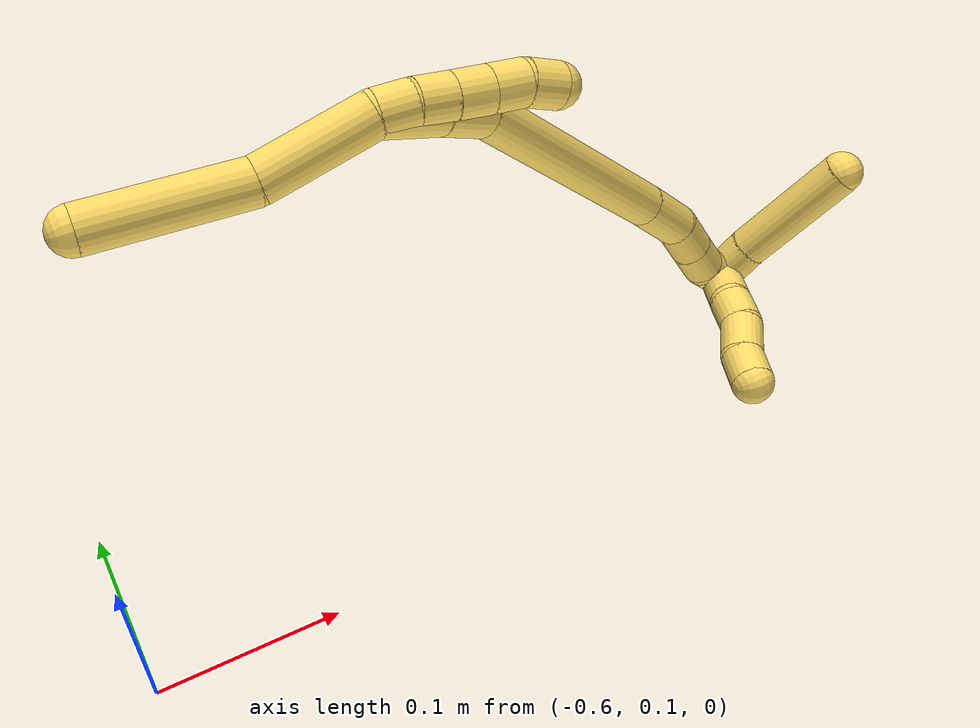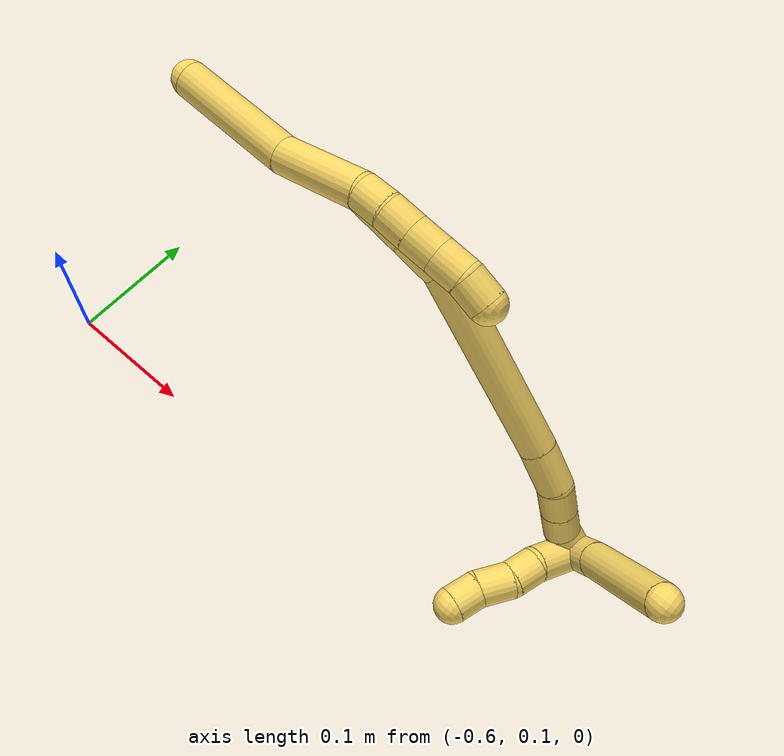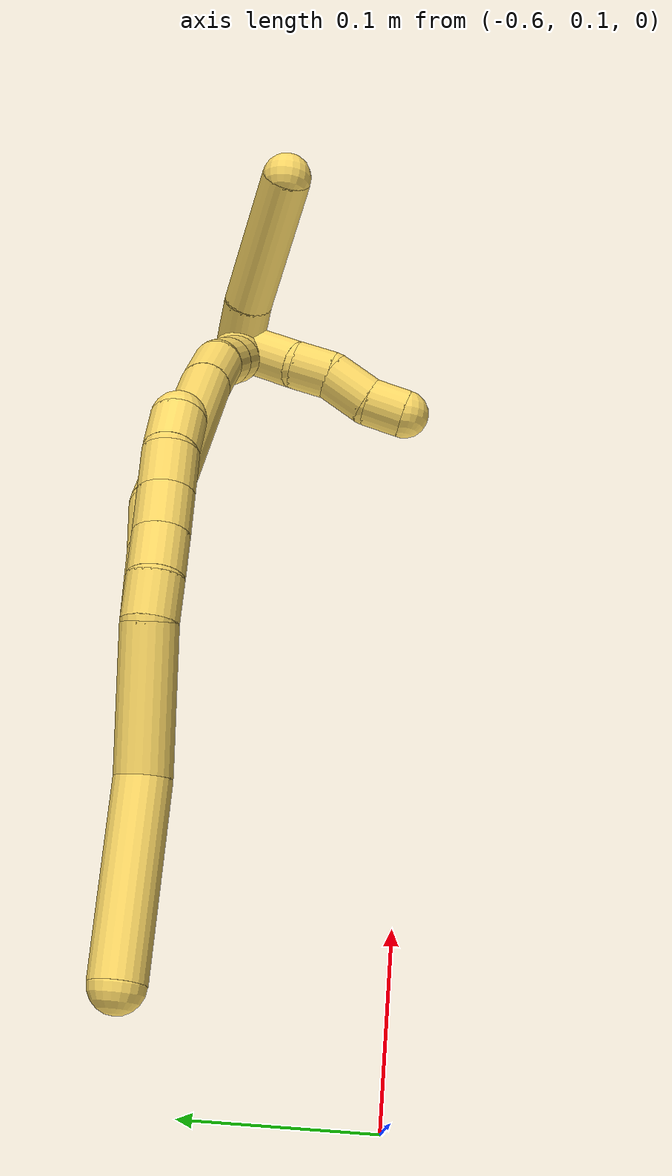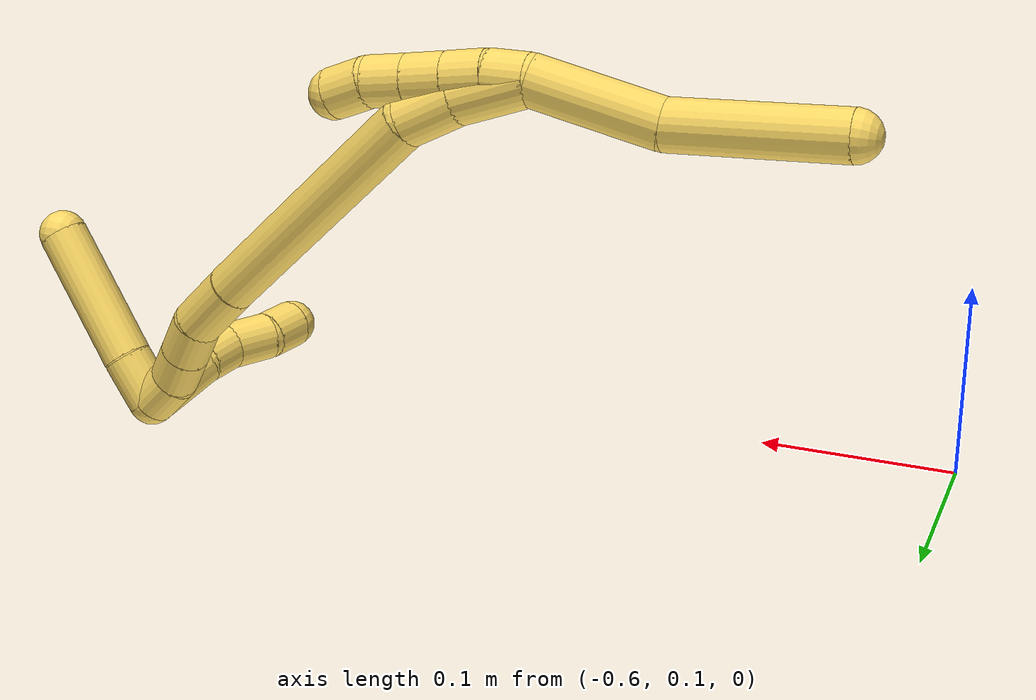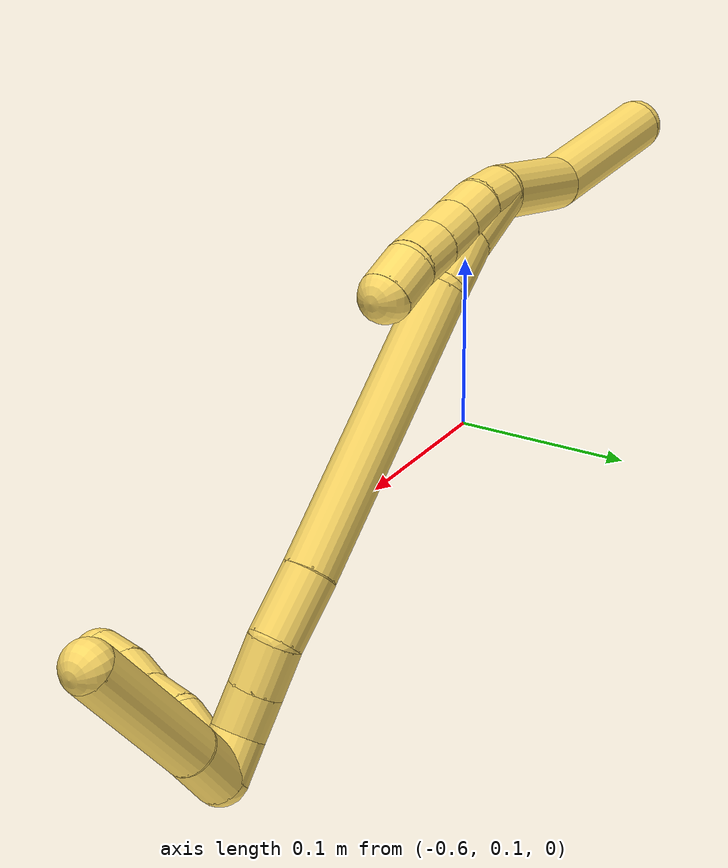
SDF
<sdf version="1.7">
 <world name="default">
  <model name="5">
   <static>0</static>
   <link name="5">
    <collision name="collision-cylinder-e_1_2_8">
     <pose>-0.005041 0.004511 0.03136 -0.142875 -0.157794 0.011315</pose>
     <geometry><cylinder><radius>0.0125</radius><length>0.064163</length></cylinder></geometry>
     <surface>
      <friction><ode><mu>1.16</mu><mu2>1.16</mu2><slip1>0</slip1><slip2>0</slip2></ode></friction>
      <contact><ode><kp>1e+06</kp><kd>1</kd><max_vel>0</max_vel><min_depth>0.001</min_depth></ode></contact>
     </surface>
    </collision>
    <visual name="visual-cylinder-e_1_2_8">
     <pose>-0.005041 0.004511 0.03136 -0.142875 -0.157794 0.011315</pose>
     <geometry><cylinder><radius>0.0125</radius><length>0.064163</length></cylinder></geometry>
     <material><ambient>1 0.858824 0.4 1</ambient></material>
    </visual>
    <collision name="collision-cylinder-e_2_8_6">
     <pose>-0.008001 0.00596 0.105479 0.071513 0.048532 0.001736</pose>
     <geometry><cylinder><radius>0.0125</radius><length>0.085837</length></cylinder></geometry>
     <surface>
      <friction><ode><mu>1.16</mu><mu2>1.16</mu2><slip1>0</slip1><slip2>0</slip2></ode></friction>
      <contact><ode><kp>1e+06</kp><kd>1</kd><max_vel>0</max_vel><min_depth>0.001</min_depth></ode></contact>
     </surface>
    </collision>
    <visual name="visual-cylinder-e_2_8_6">
     <pose>-0.008001 0.00596 0.105479 0.071513 0.048532 0.001736</pose>
     <geometry><cylinder><radius>0.0125</radius><length>0.085837</length></cylinder></geometry>
     <material><ambient>1 0.858824 0.4 1</ambient></material>
    </visual>
    <collision name="collision-cylinder-e_1_2_9">
     <pose>-0.000322 0.000238 -0.009992 -3.11778 -0.032213 1.86834</pose>
     <geometry><cylinder><radius>0.0125</radius><length>0.02</length></cylinder></geometry>
     <surface>
      <friction><ode><mu>1.16</mu><mu2>1.16</mu2><slip1>0</slip1><slip2>0</slip2></ode></friction>
      <contact><ode><kp>1e+06</kp><kd>1</kd><max_vel>0</max_vel><min_depth>0.001</min_depth></ode></contact>
     </surface>
    </collision>
    <visual name="visual-cylinder-e_1_2_9">
     <pose>-0.000322 0.000238 -0.009992 -3.11778 -0.032213 1.86834</pose>
     <geometry><cylinder><radius>0.0125</radius><length>0.02</length></cylinder></geometry>
     <material><ambient>1 0.858824 0.4 1</ambient></material>
    </visual>
    <collision name="collision-cylinder-e_2_9_10">
     <pose>-0.001621 0.002112 -0.029801 -2.97645 -0.09789 1.06886</pose>
     <geometry><cylinder><radius>0.0125</radius><length>0.02</length></cylinder></geometry>
     <surface>
      <friction><ode><mu>1.16</mu><mu2>1.16</mu2><slip1>0</slip1><slip2>0</slip2></ode></friction>
      <contact><ode><kp>1e+06</kp><kd>1</kd><max_vel>0</max_vel><min_depth>0.001</min_depth></ode></contact>
     </surface>
    </collision>
    <visual name="visual-cylinder-e_2_9_10">
     <pose>-0.001621 0.002112 -0.029801 -2.97645 -0.09789 1.06886</pose>
     <geometry><cylinder><radius>0.0125</radius><length>0.02</length></cylinder></geometry>
     <material><ambient>1 0.858824 0.4 1</ambient></material>
    </visual>
    <collision name="collision-cylinder-e_3_10_11">
     <pose>-0.003438 0.00538 -0.049448 -2.97707 -0.084027 0.943049</pose>
     <geometry><cylinder><radius>0.0125</radius><length>0.02</length></cylinder></geometry>
     <surface>
      <friction><ode><mu>1.16</mu><mu2>1.16</mu2><slip1>0</slip1><slip2>0</slip2></ode></friction>
      <contact><ode><kp>1e+06</kp><kd>1</kd><max_vel>0</max_vel><min_depth>0.001</min_depth></ode></contact>
     </surface>
    </collision>
    <visual name="visual-cylinder-e_3_10_11">
     <pose>-0.003438 0.00538 -0.049448 -2.97707 -0.084027 0.943049</pose>
     <geometry><cylinder><radius>0.0125</radius><length>0.02</length></cylinder></geometry>
     <material><ambient>1 0.858824 0.4 1</ambient></material>
    </visual>
    <collision name="collision-cylinder-e_4_11_12">
     <pose>-0.005066 0.008546 -0.069128 -2.98707 -0.078956 0.943581</pose>
     <geometry><cylinder><radius>0.0125</radius><length>0.02</length></cylinder></geometry>
     <surface>
      <friction><ode><mu>1.16</mu><mu2>1.16</mu2><slip1>0</slip1><slip2>0</slip2></ode></friction>
      <contact><ode><kp>1e+06</kp><kd>1</kd><max_vel>0</max_vel><min_depth>0.001</min_depth></ode></contact>
     </surface>
    </collision>
    <visual name="visual-cylinder-e_4_11_12">
     <pose>-0.005066 0.008546 -0.069128 -2.98707 -0.078956 0.943581</pose>
     <geometry><cylinder><radius>0.0125</radius><length>0.02</length></cylinder></geometry>
     <material><ambient>1 0.858824 0.4 1</ambient></material>
    </visual>
    <collision name="collision-cylinder-e_5_12_5">
     <pose>-0.00848 0.013395 -0.08804 -2.79099 -0.265583 1.29234</pose>
     <geometry><cylinder><radius>0.0125</radius><length>0.02</length></cylinder></geometry>
     <surface>
      <friction><ode><mu>1.16</mu><mu2>1.16</mu2><slip1>0</slip1><slip2>0</slip2></ode></friction>
      <contact><ode><kp>1e+06</kp><kd>1</kd><max_vel>0</max_vel><min_depth>0.001</min_depth></ode></contact>
     </surface>
    </collision>
    <visual name="visual-cylinder-e_5_12_5">
     <pose>-0.00848 0.013395 -0.08804 -2.79099 -0.265583 1.29234</pose>
     <geometry><cylinder><radius>0.0125</radius><length>0.02</length></cylinder></geometry>
     <material><ambient>1 0.858824 0.4 1</ambient></material>
    </visual>
    <collision name="collision-cylinder-e_1_2_13">
     <pose>-0.002885 0.006207 -0.017228 -2.79577 -0.15629 0.842933</pose>
     <geometry><cylinder><radius>0.0125</radius><length>0.037075</length></cylinder></geometry>
     <surface>
      <friction><ode><mu>1.16</mu><mu2>1.16</mu2><slip1>0</slip1><slip2>0</slip2></ode></friction>
      <contact><ode><kp>1e+06</kp><kd>1</kd><max_vel>0</max_vel><min_depth>0.001</min_depth></ode></contact>
     </surface>
    </collision>
    <visual name="visual-cylinder-e_1_2_13">
     <pose>-0.002885 0.006207 -0.017228 -2.79577 -0.15629 0.842933</pose>
     <geometry><cylinder><radius>0.0125</radius><length>0.037075</length></cylinder></geometry>
     <material><ambient>1 0.858824 0.4 1</ambient></material>
    </visual>
    <collision name="collision-cylinder-e_2_13_14">
     <pose>-0.008196 0.019015 -0.046727 -2.64812 -0.172345 0.66082</pose>
     <geometry><cylinder><radius>0.0125</radius><length>0.028287</length></cylinder></geometry>
     <surface>
      <friction><ode><mu>1.16</mu><mu2>1.16</mu2><slip1>0</slip1><slip2>0</slip2></ode></friction>
      <contact><ode><kp>1e+06</kp><kd>1</kd><max_vel>0</max_vel><min_depth>0.001</min_depth></ode></contact>
     </surface>
    </collision>
    <visual name="visual-cylinder-e_2_13_14">
     <pose>-0.008196 0.019015 -0.046727 -2.64812 -0.172345 0.66082</pose>
     <geometry><cylinder><radius>0.0125</radius><length>0.028287</length></cylinder></geometry>
     <material><ambient>1 0.858824 0.4 1</ambient></material>
    </visual>
    <collision name="collision-cylinder-e_3_14_15">
     <pose>-0.040651 0.066556 -0.10661 -2.43138 -0.446074 1.09786</pose>
     <geometry><cylinder><radius>0.0125</radius><length>0.139209</length></cylinder></geometry>
     <surface>
      <friction><ode><mu>1.16</mu><mu2>1.16</mu2><slip1>0</slip1><slip2>0</slip2></ode></friction>
      <contact><ode><kp>1e+06</kp><kd>1</kd><max_vel>0</max_vel><min_depth>0.001</min_depth></ode></contact>
     </surface>
    </collision>
    <visual name="visual-cylinder-e_3_14_15">
     <pose>-0.040651 0.066556 -0.10661 -2.43138 -0.446074 1.09786</pose>
     <geometry><cylinder><radius>0.0125</radius><length>0.139209</length></cylinder></geometry>
     <material><ambient>1 0.858824 0.4 1</ambient></material>
    </visual>
    <collision name="collision-cylinder-e_4_15_16">
     <pose>-0.078569 0.116928 -0.165135 -2.42898 -0.500466 1.20351</pose>
     <geometry><cylinder><radius>0.0125</radius><length>0.032881</length></cylinder></geometry>
     <surface>
      <friction><ode><mu>1.16</mu><mu2>1.16</mu2><slip1>0</slip1><slip2>0</slip2></ode></friction>
      <contact><ode><kp>1e+06</kp><kd>1</kd><max_vel>0</max_vel><min_depth>0.001</min_depth></ode></contact>
     </surface>
    </collision>
    <visual name="visual-cylinder-e_4_15_16">
     <pose>-0.078569 0.116928 -0.165135 -2.42898 -0.500466 1.20351</pose>
     <geometry><cylinder><radius>0.0125</radius><length>0.032881</length></cylinder></geometry>
     <material><ambient>1 0.858824 0.4 1</ambient></material>
    </visual>
    <collision name="collision-cylinder-e_5_16_17">
     <pose>-0.093255 0.133774 -0.180919 -2.15182 -0.653805 1.1219</pose>
     <geometry><cylinder><radius>0.0125</radius><length>0.022352</length></cylinder></geometry>
     <surface>
      <friction><ode><mu>1.16</mu><mu2>1.16</mu2><slip1>0</slip1><slip2>0</slip2></ode></friction>
      <contact><ode><kp>1e+06</kp><kd>1</kd><max_vel>0</max_vel><min_depth>0.001</min_depth></ode></contact>
     </surface>
    </collision>
    <visual name="visual-cylinder-e_5_16_17">
     <pose>-0.093255 0.133774 -0.180919 -2.15182 -0.653805 1.1219</pose>
     <geometry><cylinder><radius>0.0125</radius><length>0.022352</length></cylinder></geometry>
     <material><ambient>1 0.858824 0.4 1</ambient></material>
    </visual>
    <collision name="collision-cylinder-e_6_17_18">
     <pose>-0.106182 0.147834 -0.190204 -2.15735 -0.655154 1.12988</pose>
     <geometry><cylinder><radius>0.0125</radius><length>0.020121</length></cylinder></geometry>
     <surface>
      <friction><ode><mu>1.16</mu><mu2>1.16</mu2><slip1>0</slip1><slip2>0</slip2></ode></friction>
      <contact><ode><kp>1e+06</kp><kd>1</kd><max_vel>0</max_vel><min_depth>0.001</min_depth></ode></contact>
     </surface>
    </collision>
    <visual name="visual-cylinder-e_6_17_18">
     <pose>-0.106182 0.147834 -0.190204 -2.15735 -0.655154 1.12988</pose>
     <geometry><cylinder><radius>0.0125</radius><length>0.020121</length></cylinder></geometry>
     <material><ambient>1 0.858824 0.4 1</ambient></material>
    </visual>
    <collision name="collision-cylinder-e_7_18_1">
     <pose>-0.116361 0.160787 -0.201293 -2.38431 -0.415216 0.973885</pose>
     <geometry><cylinder><radius>0.0125</radius><length>0.020074</length></cylinder></geometry>
     <surface>
      <friction><ode><mu>1.16</mu><mu2>1.16</mu2><slip1>0</slip1><slip2>0</slip2></ode></friction>
      <contact><ode><kp>1e+06</kp><kd>1</kd><max_vel>0</max_vel><min_depth>0.001</min_depth></ode></contact>
     </surface>
    </collision>
    <visual name="visual-cylinder-e_7_18_1">
     <pose>-0.116361 0.160787 -0.201293 -2.38431 -0.415216 0.973885</pose>
     <geometry><cylinder><radius>0.0125</radius><length>0.020074</length></cylinder></geometry>
     <material><ambient>1 0.858824 0.4 1</ambient></material>
    </visual>
    <collision name="collision-cylinder-e_1_1_19">
     <pose>-0.130034 0.153482 -0.201641 1.13581 -0.570081 -0.369634</pose>
     <geometry><cylinder><radius>0.0125</radius><length>0.035666</length></cylinder></geometry>
     <surface>
      <friction><ode><mu>1.16</mu><mu2>1.16</mu2><slip1>0</slip1><slip2>0</slip2></ode></friction>
      <contact><ode><kp>1e+06</kp><kd>1</kd><max_vel>0</max_vel><min_depth>0.001</min_depth></ode></contact>
     </surface>
    </collision>
    <visual name="visual-cylinder-e_1_1_19">
     <pose>-0.130034 0.153482 -0.201641 1.13581 -0.570081 -0.369634</pose>
     <geometry><cylinder><radius>0.0125</radius><length>0.035666</length></cylinder></geometry>
     <material><ambient>1 0.858824 0.4 1</ambient></material>
    </visual>
    <collision name="collision-cylinder-e_2_19_20">
     <pose>-0.147419 0.13385 -0.192821 1.17781 -0.872533 -0.603813</pose>
     <geometry><cylinder><radius>0.0125</radius><length>0.020261</length></cylinder></geometry>
     <surface>
      <friction><ode><mu>1.16</mu><mu2>1.16</mu2><slip1>0</slip1><slip2>0</slip2></ode></friction>
      <contact><ode><kp>1e+06</kp><kd>1</kd><max_vel>0</max_vel><min_depth>0.001</min_depth></ode></contact>
     </surface>
    </collision>
    <visual name="visual-cylinder-e_2_19_20">
     <pose>-0.147419 0.13385 -0.192821 1.17781 -0.872533 -0.603813</pose>
     <geometry><cylinder><radius>0.0125</radius><length>0.020261</length></cylinder></geometry>
     <material><ambient>1 0.858824 0.4 1</ambient></material>
    </visual>
    <collision name="collision-cylinder-e_3_20_21">
     <pose>-0.163689 0.122173 -0.184011 0.730822 -0.787128 -0.315093</pose>
     <geometry><cylinder><radius>0.0125</radius><length>0.024029</length></cylinder></geometry>
     <surface>
      <friction><ode><mu>1.16</mu><mu2>1.16</mu2><slip1>0</slip1><slip2>0</slip2></ode></friction>
      <contact><ode><kp>1e+06</kp><kd>1</kd><max_vel>0</max_vel><min_depth>0.001</min_depth></ode></contact>
     </surface>
    </collision>
    <visual name="visual-cylinder-e_3_20_21">
     <pose>-0.163689 0.122173 -0.184011 0.730822 -0.787128 -0.315093</pose>
     <geometry><cylinder><radius>0.0125</radius><length>0.024029</length></cylinder></geometry>
     <material><ambient>1 0.858824 0.4 1</ambient></material>
    </visual>
    <collision name="collision-cylinder-e_4_21_4">
     <pose>-0.180156 0.111029 -0.175041 1.11976 -0.917408 -0.60035</pose>
     <geometry><cylinder><radius>0.0125</radius><length>0.020043</length></cylinder></geometry>
     <surface>
      <friction><ode><mu>1.16</mu><mu2>1.16</mu2><slip1>0</slip1><slip2>0</slip2></ode></friction>
      <contact><ode><kp>1e+06</kp><kd>1</kd><max_vel>0</max_vel><min_depth>0.001</min_depth></ode></contact>
     </surface>
    </collision>
    <visual name="visual-cylinder-e_4_21_4">
     <pose>-0.180156 0.111029 -0.175041 1.11976 -0.917408 -0.60035</pose>
     <geometry><cylinder><radius>0.0125</radius><length>0.020043</length></cylinder></geometry>
     <material><ambient>1 0.858824 0.4 1</ambient></material>
    </visual>
    <collision name="collision-cylinder-e_1_1_22">
     <pose>-0.116326 0.157571 -0.216107 2.27788 0.315062 0.663837</pose>
     <geometry><cylinder><radius>0.0125</radius><length>0.026356</length></cylinder></geometry>
     <surface>
      <friction><ode><mu>1.16</mu><mu2>1.16</mu2><slip1>0</slip1><slip2>0</slip2></ode></friction>
      <contact><ode><kp>1e+06</kp><kd>1</kd><max_vel>0</max_vel><min_depth>0.001</min_depth></ode></contact>
     </surface>
    </collision>
    <visual name="visual-cylinder-e_1_1_22">
     <pose>-0.116326 0.157571 -0.216107 2.27788 0.315062 0.663837</pose>
     <geometry><cylinder><radius>0.0125</radius><length>0.026356</length></cylinder></geometry>
     <material><ambient>1 0.858824 0.4 1</ambient></material>
    </visual>
    <collision name="collision-cylinder-e_2_22_3">
     <pose>-0.103928 0.120339 -0.247029 2.25897 0.227772 0.475127</pose>
     <geometry><cylinder><radius>0.0125</radius><length>0.073644</length></cylinder></geometry>
     <surface>
      <friction><ode><mu>1.16</mu><mu2>1.16</mu2><slip1>0</slip1><slip2>0</slip2></ode></friction>
      <contact><ode><kp>1e+06</kp><kd>1</kd><max_vel>0</max_vel><min_depth>0.001</min_depth></ode></contact>
     </surface>
    </collision>
    <visual name="visual-cylinder-e_2_22_3">
     <pose>-0.103928 0.120339 -0.247029 2.25897 0.227772 0.475127</pose>
     <geometry><cylinder><radius>0.0125</radius><length>0.073644</length></cylinder></geometry>
     <material><ambient>1 0.858824 0.4 1</ambient></material>
    </visual>
    <collision name="collision-sphere-3">
     <pose>-0.095613 0.092632 -0.269812 0 -0 0</pose>
     <geometry><sphere><radius>0.0125</radius></sphere></geometry>
     <surface>
      <friction><ode><mu>1.16</mu><mu2>1.16</mu2><slip1>0</slip1><slip2>0</slip2></ode></friction>
      <contact><ode><kp>1e+06</kp><kd>1</kd><max_vel>0</max_vel><min_depth>0.001</min_depth></ode></contact>
     </surface>
    </collision>
    <visual name="visual-sphere-3">
     <pose>-0.095613 0.092632 -0.269812 0 -0 0</pose>
     <geometry><sphere><radius>0.0125</radius></sphere></geometry>
     <material><ambient>1 0.858824 0.4 1</ambient></material>
    </visual>
    <collision name="collision-sphere-22">
     <pose>-0.112243 0.148045 -0.224246 0 -0 0</pose>
     <geometry><sphere><radius>0.0125</radius></sphere></geometry>
     <surface>
      <friction><ode><mu>1.16</mu><mu2>1.16</mu2><slip1>0</slip1><slip2>0</slip2></ode></friction>
      <contact><ode><kp>1e+06</kp><kd>1</kd><max_vel>0</max_vel><min_depth>0.001</min_depth></ode></contact>
     </surface>
    </collision>
    <visual name="visual-sphere-22">
     <pose>-0.112243 0.148045 -0.224246 0 -0 0</pose>
     <geometry><sphere><radius>0.0125</radius></sphere></geometry>
     <material><ambient>1 0.858824 0.4 1</ambient></material>
    </visual>
    <collision name="collision-sphere-4">
     <pose>-0.188114 0.105547 -0.172385 0 -0 0</pose>
     <geometry><sphere><radius>0.0125</radius></sphere></geometry>
     <surface>
      <friction><ode><mu>1.16</mu><mu2>1.16</mu2><slip1>0</slip1><slip2>0</slip2></ode></friction>
      <contact><ode><kp>1e+06</kp><kd>1</kd><max_vel>0</max_vel><min_depth>0.001</min_depth></ode></contact>
     </surface>
    </collision>
    <visual name="visual-sphere-4">
     <pose>-0.188114 0.105547 -0.172385 0 -0 0</pose>
     <geometry><sphere><radius>0.0125</radius></sphere></geometry>
     <material><ambient>1 0.858824 0.4 1</ambient></material>
    </visual>
    <collision name="collision-sphere-21">
     <pose>-0.172199 0.116512 -0.177696 0 -0 0</pose>
     <geometry><sphere><radius>0.0125</radius></sphere></geometry>
     <surface>
      <friction><ode><mu>1.16</mu><mu2>1.16</mu2><slip1>0</slip1><slip2>0</slip2></ode></friction>
      <contact><ode><kp>1e+06</kp><kd>1</kd><max_vel>0</max_vel><min_depth>0.001</min_depth></ode></contact>
     </surface>
    </collision>
    <visual name="visual-sphere-21">
     <pose>-0.172199 0.116512 -0.177696 0 -0 0</pose>
     <geometry><sphere><radius>0.0125</radius></sphere></geometry>
     <material><ambient>1 0.858824 0.4 1</ambient></material>
    </visual>
    <collision name="collision-sphere-20">
     <pose>-0.155178 0.127834 -0.190327 0 -0 0</pose>
     <geometry><sphere><radius>0.0125</radius></sphere></geometry>
     <surface>
      <friction><ode><mu>1.16</mu><mu2>1.16</mu2><slip1>0</slip1><slip2>0</slip2></ode></friction>
      <contact><ode><kp>1e+06</kp><kd>1</kd><max_vel>0</max_vel><min_depth>0.001</min_depth></ode></contact>
     </surface>
    </collision>
    <visual name="visual-sphere-20">
     <pose>-0.155178 0.127834 -0.190327 0 -0 0</pose>
     <geometry><sphere><radius>0.0125</radius></sphere></geometry>
     <material><ambient>1 0.858824 0.4 1</ambient></material>
    </visual>
    <collision name="collision-sphere-11">
     <pose>-0.004277 0.007012 -0.059278 0 -0 0</pose>
     <geometry><sphere><radius>0.0125</radius></sphere></geometry>
     <surface>
      <friction><ode><mu>1.16</mu><mu2>1.16</mu2><slip1>0</slip1><slip2>0</slip2></ode></friction>
      <contact><ode><kp>1e+06</kp><kd>1</kd><max_vel>0</max_vel><min_depth>0.001</min_depth></ode></contact>
     </surface>
    </collision>
    <visual name="visual-sphere-11">
     <pose>-0.004277 0.007012 -0.059278 0 -0 0</pose>
     <geometry><sphere><radius>0.0125</radius></sphere></geometry>
     <material><ambient>1 0.858824 0.4 1</ambient></material>
    </visual>
    <collision name="collision-sphere-10">
     <pose>-0.002599 0.003748 -0.039617 0 -0 0</pose>
     <geometry><sphere><radius>0.0125</radius></sphere></geometry>
     <surface>
      <friction><ode><mu>1.16</mu><mu2>1.16</mu2><slip1>0</slip1><slip2>0</slip2></ode></friction>
      <contact><ode><kp>1e+06</kp><kd>1</kd><max_vel>0</max_vel><min_depth>0.001</min_depth></ode></contact>
     </surface>
    </collision>
    <visual name="visual-sphere-10">
     <pose>-0.002599 0.003748 -0.039617 0 -0 0</pose>
     <geometry><sphere><radius>0.0125</radius></sphere></geometry>
     <material><ambient>1 0.858824 0.4 1</ambient></material>
    </visual>
    <collision name="collision-sphere-6">
     <pose>-0.005918 0.002897 0.148237 0 -0 0</pose>
     <geometry><sphere><radius>0.0125</radius></sphere></geometry>
     <surface>
      <friction><ode><mu>1.16</mu><mu2>1.16</mu2><slip1>0</slip1><slip2>0</slip2></ode></friction>
      <contact><ode><kp>1e+06</kp><kd>1</kd><max_vel>0</max_vel><min_depth>0.001</min_depth></ode></contact>
     </surface>
    </collision>
    <visual name="visual-sphere-6">
     <pose>-0.005918 0.002897 0.148237 0 -0 0</pose>
     <geometry><sphere><radius>0.0125</radius></sphere></geometry>
     <material><ambient>1 0.858824 0.4 1</ambient></material>
    </visual>
    <collision name="collision-sphere-9">
     <pose>-0.000644 0.000476 -0.019984 0 -0 0</pose>
     <geometry><sphere><radius>0.0125</radius></sphere></geometry>
     <surface>
      <friction><ode><mu>1.16</mu><mu2>1.16</mu2><slip1>0</slip1><slip2>0</slip2></ode></friction>
      <contact><ode><kp>1e+06</kp><kd>1</kd><max_vel>0</max_vel><min_depth>0.001</min_depth></ode></contact>
     </surface>
    </collision>
    <visual name="visual-sphere-9">
     <pose>-0.000644 0.000476 -0.019984 0 -0 0</pose>
     <geometry><sphere><radius>0.0125</radius></sphere></geometry>
     <material><ambient>1 0.858824 0.4 1</ambient></material>
    </visual>
    <collision name="collision-sphere-2">
     <geometry><sphere><radius>0.0125</radius></sphere></geometry>
     <surface>
      <friction><ode><mu>1.16</mu><mu2>1.16</mu2><slip1>0</slip1><slip2>0</slip2></ode></friction>
      <contact><ode><kp>1e+06</kp><kd>1</kd><max_vel>0</max_vel><min_depth>0.001</min_depth></ode></contact>
     </surface>
    </collision>
    <visual name="visual-sphere-2">
     <geometry><sphere><radius>0.0125</radius></sphere></geometry>
     <material><ambient>1 0.858824 0.4 1</ambient></material>
    </visual>
    <collision name="collision-sphere-19">
     <pose>-0.139659 0.139867 -0.195315 0 -0 0</pose>
     <geometry><sphere><radius>0.0125</radius></sphere></geometry>
     <surface>
      <friction><ode><mu>1.16</mu><mu2>1.16</mu2><slip1>0</slip1><slip2>0</slip2></ode></friction>
      <contact><ode><kp>1e+06</kp><kd>1</kd><max_vel>0</max_vel><min_depth>0.001</min_depth></ode></contact>
     </surface>
    </collision>
    <visual name="visual-sphere-19">
     <pose>-0.139659 0.139867 -0.195315 0 -0 0</pose>
     <geometry><sphere><radius>0.0125</radius></sphere></geometry>
     <material><ambient>1 0.858824 0.4 1</ambient></material>
    </visual>
    <collision name="collision-sphere-8">
     <pose>-0.010083 0.009023 0.06272 0 -0 0</pose>
     <geometry><sphere><radius>0.0125</radius></sphere></geometry>
     <surface>
      <friction><ode><mu>1.16</mu><mu2>1.16</mu2><slip1>0</slip1><slip2>0</slip2></ode></friction>
      <contact><ode><kp>1e+06</kp><kd>1</kd><max_vel>0</max_vel><min_depth>0.001</min_depth></ode></contact>
     </surface>
    </collision>
    <visual name="visual-sphere-8">
     <pose>-0.010083 0.009023 0.06272 0 -0 0</pose>
     <geometry><sphere><radius>0.0125</radius></sphere></geometry>
     <material><ambient>1 0.858824 0.4 1</ambient></material>
    </visual>
    <collision name="collision-sphere-12">
     <pose>-0.005855 0.010081 -0.078978 0 -0 0</pose>
     <geometry><sphere><radius>0.0125</radius></sphere></geometry>
     <surface>
      <friction><ode><mu>1.16</mu><mu2>1.16</mu2><slip1>0</slip1><slip2>0</slip2></ode></friction>
      <contact><ode><kp>1e+06</kp><kd>1</kd><max_vel>0</max_vel><min_depth>0.001</min_depth></ode></contact>
     </surface>
    </collision>
    <visual name="visual-sphere-12">
     <pose>-0.005855 0.010081 -0.078978 0 -0 0</pose>
     <geometry><sphere><radius>0.0125</radius></sphere></geometry>
     <material><ambient>1 0.858824 0.4 1</ambient></material>
    </visual>
    <collision name="collision-sphere-5">
     <pose>-0.011104 0.016709 -0.097103 0 -0 0</pose>
     <geometry><sphere><radius>0.0125</radius></sphere></geometry>
     <surface>
      <friction><ode><mu>1.16</mu><mu2>1.16</mu2><slip1>0</slip1><slip2>0</slip2></ode></friction>
      <contact><ode><kp>1e+06</kp><kd>1</kd><max_vel>0</max_vel><min_depth>0.001</min_depth></ode></contact>
     </surface>
    </collision>
    <visual name="visual-sphere-5">
     <pose>-0.011104 0.016709 -0.097103 0 -0 0</pose>
     <geometry><sphere><radius>0.0125</radius></sphere></geometry>
     <material><ambient>1 0.858824 0.4 1</ambient></material>
    </visual>
    <collision name="collision-sphere-13">
     <pose>-0.005771 0.012414 -0.034455 0 -0 0</pose>
     <geometry><sphere><radius>0.0125</radius></sphere></geometry>
     <surface>
      <friction><ode><mu>1.16</mu><mu2>1.16</mu2><slip1>0</slip1><slip2>0</slip2></ode></friction>
      <contact><ode><kp>1e+06</kp><kd>1</kd><max_vel>0</max_vel><min_depth>0.001</min_depth></ode></contact>
     </surface>
    </collision>
    <visual name="visual-sphere-13">
     <pose>-0.005771 0.012414 -0.034455 0 -0 0</pose>
     <geometry><sphere><radius>0.0125</radius></sphere></geometry>
     <material><ambient>1 0.858824 0.4 1</ambient></material>
    </visual>
    <collision name="collision-sphere-14">
     <pose>-0.010622 0.025615 -0.058999 0 -0 0</pose>
     <geometry><sphere><radius>0.0125</radius></sphere></geometry>
     <surface>
      <friction><ode><mu>1.16</mu><mu2>1.16</mu2><slip1>0</slip1><slip2>0</slip2></ode></friction>
      <contact><ode><kp>1e+06</kp><kd>1</kd><max_vel>0</max_vel><min_depth>0.001</min_depth></ode></contact>
     </surface>
    </collision>
    <visual name="visual-sphere-14">
     <pose>-0.010622 0.025615 -0.058999 0 -0 0</pose>
     <geometry><sphere><radius>0.0125</radius></sphere></geometry>
     <material><ambient>1 0.858824 0.4 1</ambient></material>
    </visual>
    <collision name="collision-sphere-15">
     <pose>-0.07068 0.107497 -0.154221 0 -0 0</pose>
     <geometry><sphere><radius>0.0125</radius></sphere></geometry>
     <surface>
      <friction><ode><mu>1.16</mu><mu2>1.16</mu2><slip1>0</slip1><slip2>0</slip2></ode></friction>
      <contact><ode><kp>1e+06</kp><kd>1</kd><max_vel>0</max_vel><min_depth>0.001</min_depth></ode></contact>
     </surface>
    </collision>
    <visual name="visual-sphere-15">
     <pose>-0.07068 0.107497 -0.154221 0 -0 0</pose>
     <geometry><sphere><radius>0.0125</radius></sphere></geometry>
     <material><ambient>1 0.858824 0.4 1</ambient></material>
    </visual>
    <collision name="collision-sphere-16">
     <pose>-0.086458 0.126359 -0.17605 0 -0 0</pose>
     <geometry><sphere><radius>0.0125</radius></sphere></geometry>
     <surface>
      <friction><ode><mu>1.16</mu><mu2>1.16</mu2><slip1>0</slip1><slip2>0</slip2></ode></friction>
      <contact><ode><kp>1e+06</kp><kd>1</kd><max_vel>0</max_vel><min_depth>0.001</min_depth></ode></contact>
     </surface>
    </collision>
    <visual name="visual-sphere-16">
     <pose>-0.086458 0.126359 -0.17605 0 -0 0</pose>
     <geometry><sphere><radius>0.0125</radius></sphere></geometry>
     <material><ambient>1 0.858824 0.4 1</ambient></material>
    </visual>
    <collision name="collision-sphere-17">
     <pose>-0.100053 0.14119 -0.185788 0 -0 0</pose>
     <geometry><sphere><radius>0.0125</radius></sphere></geometry>
     <surface>
      <friction><ode><mu>1.16</mu><mu2>1.16</mu2><slip1>0</slip1><slip2>0</slip2></ode></friction>
      <contact><ode><kp>1e+06</kp><kd>1</kd><max_vel>0</max_vel><min_depth>0.001</min_depth></ode></contact>
     </surface>
    </collision>
    <visual name="visual-sphere-17">
     <pose>-0.100053 0.14119 -0.185788 0 -0 0</pose>
     <geometry><sphere><radius>0.0125</radius></sphere></geometry>
     <material><ambient>1 0.858824 0.4 1</ambient></material>
    </visual>
    <collision name="collision-sphere-18">
     <pose>-0.112312 0.154478 -0.194619 0 -0 0</pose>
     <geometry><sphere><radius>0.0125</radius></sphere></geometry>
     <surface>
      <friction><ode><mu>1.16</mu><mu2>1.16</mu2><slip1>0</slip1><slip2>0</slip2></ode></friction>
      <contact><ode><kp>1e+06</kp><kd>1</kd><max_vel>0</max_vel><min_depth>0.001</min_depth></ode></contact>
     </surface>
    </collision>
    <visual name="visual-sphere-18">
     <pose>-0.112312 0.154478 -0.194619 0 -0 0</pose>
     <geometry><sphere><radius>0.0125</radius></sphere></geometry>
     <material><ambient>1 0.858824 0.4 1</ambient></material>
    </visual>
    <collision name="collision-sphere-1">
     <pose>-0.12041 0.167097 -0.207968 0 -0 0</pose>
     <geometry><sphere><radius>0.0125</radius></sphere></geometry>
     <surface>
      <friction><ode><mu>1.16</mu><mu2>1.16</mu2><slip1>0</slip1><slip2>0</slip2></ode></friction>
      <contact><ode><kp>1e+06</kp><kd>1</kd><max_vel>0</max_vel><min_depth>0.001</min_depth></ode></contact>
     </surface>
    </collision>
    <visual name="visual-sphere-1">
     <pose>-0.12041 0.167097 -0.207968 0 -0 0</pose>
     <geometry><sphere><radius>0.0125</radius></sphere></geometry>
     <material><ambient>1 0.858824 0.4 1</ambient></material>
    </visual>
    <inertial>
     <pose>-0.056554 0.06777 -0.094562 0 -0 0</pose>
     <mass>0.75</mass>
     <inertia>
      <ixx>0.000432</ixx>
      <ixy>0</ixy>
      <ixz>0</ixz>
      <iyy>0.000263</iyy>
      <iyz>0</iyz>
      <izz>-1.9e-05</izz>
     </inertia>
    </inertial>
   </link>
   <pose>-0.411873 0.216848 0.217622 -1.6034 -0.567085 1.56379</pose>
  </model>
 </world>
</sdf>
